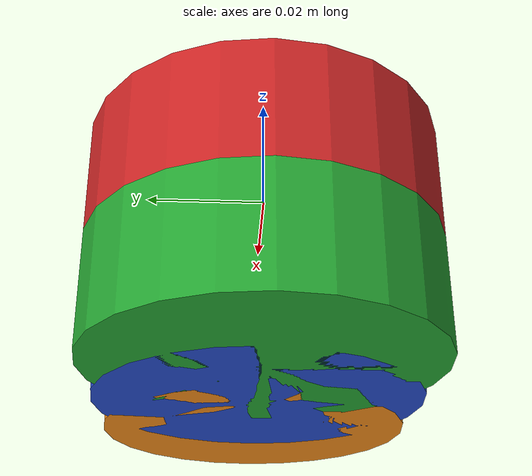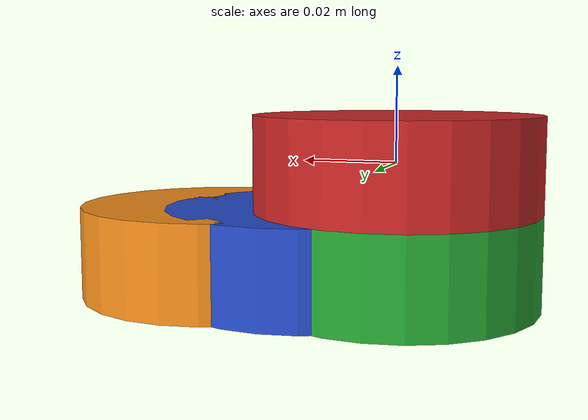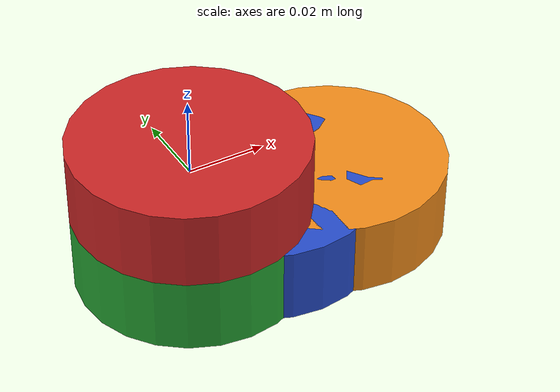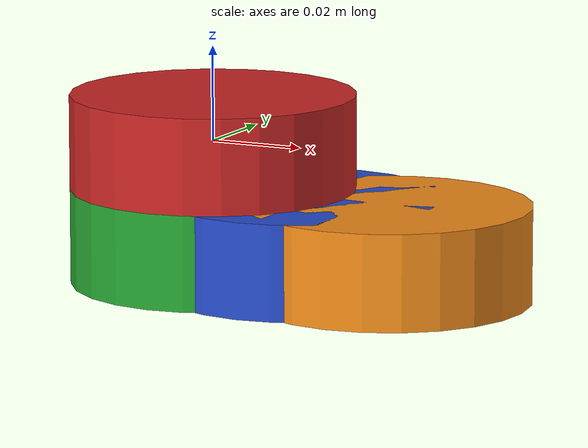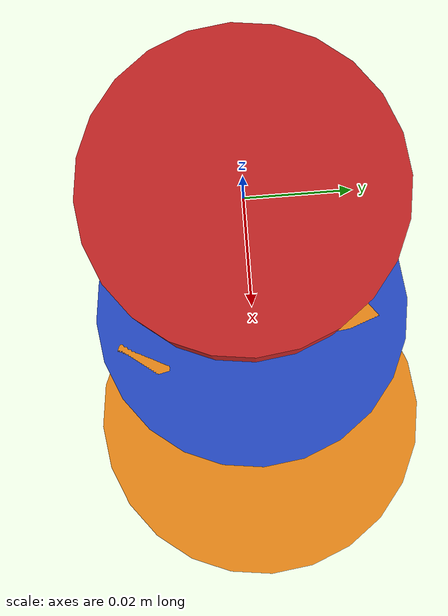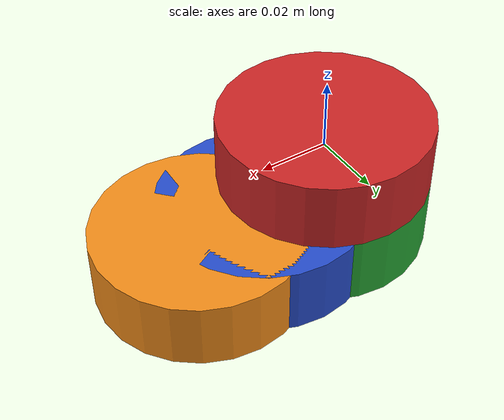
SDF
<!-- vim: set et fenc=utf-8 ff=unix sts=0 sw=2 ts=2 : --><?xml version="1.0" ?>
<sdf version="1.5">

  <model name="tarot-t4-3d-gimbal">

    <self_collide>false</self_collide>
    <static>false</static>

    <!--Link base-link -->

      <link name="base-link">

        <pose>0 0 0 0 0 0</pose>

        link.m/12*(link.l**2 + link.w**2) %}
        <inertial>
          <mass>0.1</mass>
          <inertia>
            <ixx>2.58333333333e-05</ixx>
            <iyy>2.58333333333e-05</iyy>
            <izz>4.5e-05</izz>
          </inertia>
        </inertial>

        <visual name="visual">
          <geometry>
          <cylinder>
            <radius>0.03</radius>
            <length>0.02</length>
          </cylinder>
        </geometry>
          <material>
            <script>
              <name>Gazebo/Red</name>
              <uri>file://media/materials/scripts/gazebo.material</uri>
            </script>
          </material>
        </visual>

        <collision name="collision">
          <geometry>
          <cylinder>
            <radius>0.03</radius>
            <length>0.02</length>
          </cylinder>
        </geometry>
        </collision>

      </link>

    <!--Link pan-link -->

      <link name="pan-link">

        <pose>0 0 -0.02 0 0 0</pose>

        link.m/12*(link.l**2 + link.w**2) %}
        <inertial>
          <mass>0.1</mass>
          <inertia>
            <ixx>2.58333333333e-05</ixx>
            <iyy>2.58333333333e-05</iyy>
            <izz>4.5e-05</izz>
          </inertia>
        </inertial>

        <visual name="visual">
          <geometry>
          <cylinder>
            <radius>0.03</radius>
            <length>0.02</length>
          </cylinder>
        </geometry>
          <material>
            <script>
              <name>Gazebo/Green</name>
              <uri>file://media/materials/scripts/gazebo.material</uri>
            </script>
          </material>
        </visual>

      </link>

      <joint name="pan-joint" type="revolute">
        <pose>0 0 0 0 0 0</pose>
        <child>pan-link</child>
        <parent>base-link</parent>
        <axis>
          <xyz>0 0 1</xyz>
          <limit>
            <lower>0</lower>
            <upper>0</upper>
            <effort>100</effort>
            <velocity>-1</velocity>
          </limit>
          <dynamics>
            <damping>-1</damping>
            <spring_reference>0.0</spring_reference>
            <spring_stiffness>0.0</spring_stiffness>
          </dynamics>
        </axis>
        <physics>
          <ode>
            <implicit_spring_damper>1</implicit_spring_damper>
          </ode>
        </physics>
      </joint>

    <!--Link roll-link -->

      <link name="roll-link">

        <pose>0.02 0 -0.02 0 0 0</pose>

        link.m/12*(link.l**2 + link.w**2) %}
        <inertial>
          <mass>0.1</mass>
          <inertia>
            <ixx>2.58333333333e-05</ixx>
            <iyy>2.58333333333e-05</iyy>
            <izz>4.5e-05</izz>
          </inertia>
        </inertial>

        <visual name="visual">
          <geometry>
          <cylinder>
            <radius>0.03</radius>
            <length>0.02</length>
          </cylinder>
        </geometry>
          <material>
            <script>
              <name>Gazebo/Blue</name>
              <uri>file://media/materials/scripts/gazebo.material</uri>
            </script>
          </material>
        </visual>

      </link>

      <joint name="roll-joint" type="revolute">
        <pose>0 0 0 0 0 0</pose>
        <child>roll-link</child>
        <parent>pan-link</parent>
        <axis>
          <xyz>1 0 0</xyz>
          <limit>
            <lower>-10000</lower>
            <upper>10000</upper>
            <effort>100</effort>
            <velocity>-1</velocity>
          </limit>
          <dynamics>
            <damping>-1</damping>
            <spring_reference>0.0</spring_reference>
            <spring_stiffness>0.0</spring_stiffness>
          </dynamics>
        </axis>
        <physics>
          <ode>
            <implicit_spring_damper>1</implicit_spring_damper>
          </ode>
        </physics>
      </joint>

    <!--Link tilt-link -->

      <link name="tilt-link">

        <pose>0.04 0 -0.02 0 0 0</pose>

        link.m/12*(link.l**2 + link.w**2) %}
        <inertial>
          <mass>0.1</mass>
          <inertia>
            <ixx>2.58333333333e-05</ixx>
            <iyy>2.58333333333e-05</iyy>
            <izz>4.5e-05</izz>
          </inertia>
        </inertial>

        <visual name="visual">
          <geometry>
          <cylinder>
            <radius>0.03</radius>
            <length>0.02</length>
          </cylinder>
        </geometry>
          <material>
            <script>
              <name>Gazebo/Orange</name>
              <uri>file://media/materials/scripts/gazebo.material</uri>
            </script>
          </material>
        </visual>

        <sensor name="camera_imu" type="imu">
          <always_on>1</always_on>
        </sensor>

      </link>

      <joint name="tilt-joint" type="revolute">
        <pose>0 0 0 0 0 0</pose>
        <child>tilt-link</child>
        <parent>roll-link</parent>
        <axis>
          <xyz>0 1 0</xyz>
          <limit>
            <lower>-10000</lower>
            <upper>10000</upper>
            <effort>100</effort>
            <velocity>-1</velocity>
          </limit>
          <dynamics>
            <damping>-1</damping>
            <spring_reference>0.0</spring_reference>
            <spring_stiffness>0.0</spring_stiffness>
          </dynamics>
        </axis>
        <physics>
          <ode>
            <implicit_spring_damper>1</implicit_spring_damper>
          </ode>
        </physics>
      </joint>

  <plugin name='gimbal_controller' filename='librotors_gazebo_gimbal_controller_plugin.so'>
    <joint_yaw>pan-joint</joint_yaw>
    <joint_roll>roll-joint</joint_roll>
    <joint_pitch>tilt-joint</joint_pitch>
    <imu>camera_imu</imu>
  </plugin>

  </model>

</sdf>
